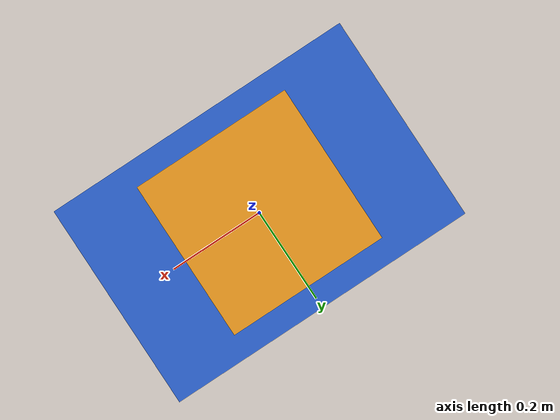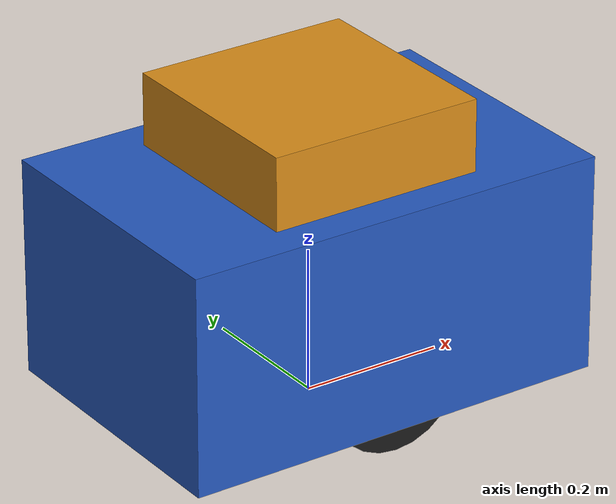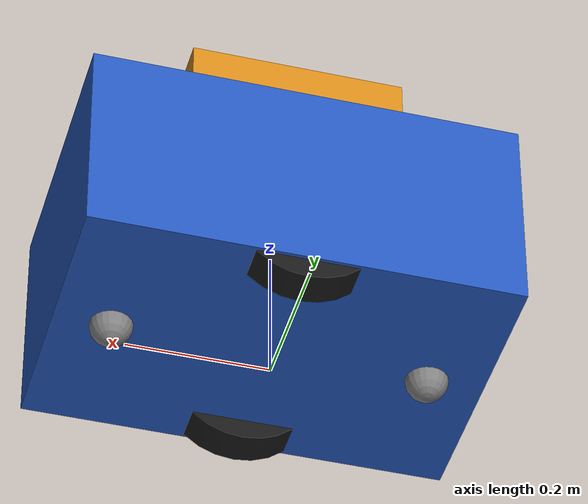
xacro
<?xml version="1.0"?>
<robot name="amr_payload" xmlns:xacro="http://www.ros.org/wiki/xacro">

  <xacro:arg name="payload_kg" default="0.0"/>
  <xacro:arg name="drive_mode" default="V"/>
  <xacro:arg name="accel_limited" default="true"/>
  <xacro:arg name="wheel_torque_max" default="3.0"/>
  <xacro:arg name="gt_rate" default="100"/>

  <xacro:property name="payload_kg" value="$(arg payload_kg)"/>
  <xacro:property name="wheel_torque_max" value="$(arg wheel_torque_max)"/>
  <xacro:property name="gt_rate" value="$(arg gt_rate)"/>

  <xacro:property name="is_drive_v" value="${'$(arg drive_mode)' == 'V'}"/>
  <xacro:property name="is_drive_t" value="${'$(arg drive_mode)' == 'T'}"/>
  <xacro:property name="accel_limited" value="${'$(arg accel_limited)' == 'true'}"/>

  <!-- 같은 model/ 디렉토리의 상대 경로. ROS 패키지가 아니라 find-pkg-share를 안 쓴다 -->
  <xacro:include filename="properties.xacro"/>
  <xacro:include filename="base.xacro"/>
  <xacro:include filename="wheels.xacro"/>
  <xacro:include filename="gazebo.xacro"/>

</robot>

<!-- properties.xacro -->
<robot xmlns:xacro="http://www.ros.org/wiki/xacro">

  <!-- 몸체: 0.6 x 0.4 x 0.3 m, 25 kg (README "모터 사양 근거" 참고) -->
  <xacro:property name="base_length" value="0.6"/>
  <xacro:property name="base_width" value="0.4"/>
  <xacro:property name="base_height" value="0.3"/>
  <xacro:property name="base_mass" value="25.0"/>
  <xacro:property name="ground_clearance" value="0.03"/>

  <!-- 적재물 상자: 몸체 위 중앙. 크기는 고정, 질량만 payload_kg 인자로 바뀐다 -->
  <xacro:property name="payload_length" value="0.3"/>
  <xacro:property name="payload_width" value="0.3"/>
  <xacro:property name="payload_height" value="0.1"/>
  <!-- 0 kg 조건에서 질량 0인 링크는 관성 행렬이 특이해져 물리 엔진이 불안정해질 수
       있어, 실질적으로 0인 아주 작은 질량으로 바닥을 깐다(결과에 영향 없음) -->
  <xacro:property name="payload_mass_floor" value="0.0001"/>

  <!-- 구동 바퀴 -->
  <xacro:property name="wheel_radius" value="0.1"/>
  <xacro:property name="wheel_width" value="0.05"/>
  <xacro:property name="wheel_contact_width" value="0.01"/>
  <xacro:property name="wheel_separation" value="0.34"/>
  <xacro:property name="wheel_mass" value="1.5"/>

  <!-- 캐스터: 앞뒤 2개, 마찰 없는 구 -->
  <xacro:property name="caster_radius" value="0.03"/>
  <xacro:property name="caster_offset_x" value="0.22"/>
  <xacro:property name="caster_mass" value="0.3"/>

  <!-- base_footprint(지면) → base_link(몸체 중심) 높이 -->
  <xacro:property name="base_z" value="${ground_clearance + base_height / 2}"/>

  <!-- 관성 모멘트 매크로 (amr_description/urdf/properties.xacro와 동일한 식) -->
  <xacro:macro name="box_inertia" params="m x y z">
    <inertial>
      <mass value="${m}"/>
      <inertia ixx="${m * (y*y + z*z) / 12}" ixy="0" ixz="0"
               iyy="${m * (x*x + z*z) / 12}" iyz="0"
               izz="${m * (x*x + y*y) / 12}"/>
    </inertial>
  </xacro:macro>

  <xacro:macro name="cylinder_inertia" params="m r h">
    <inertial>
      <mass value="${m}"/>
      <inertia ixx="${m * (3*r*r + h*h) / 12}" ixy="0" ixz="0"
               iyy="${m * (3*r*r + h*h) / 12}" iyz="0"
               izz="${m * r * r / 2}"/>
    </inertial>
  </xacro:macro>

  <xacro:macro name="sphere_inertia" params="m r">
    <inertial>
      <mass value="${m}"/>
      <inertia ixx="${2 * m * r * r / 5}" ixy="0" ixz="0"
               iyy="${2 * m * r * r / 5}" iyz="0"
               izz="${2 * m * r * r / 5}"/>
    </inertial>
  </xacro:macro>

</robot>

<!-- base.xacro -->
<!-- base_footprint(지면) → base_link(몸체) → payload_link(적재물, 고정 조인트) -->
<robot xmlns:xacro="http://www.ros.org/wiki/xacro">

  <link name="base_footprint"/>

  <link name="base_link">
    <visual>
      <geometry>
        <box size="${base_length} ${base_width} ${base_height}"/>
      </geometry>
      <material name="body">
        <color rgba="0.15 0.35 0.75 1"/>
      </material>
    </visual>
    <collision>
      <geometry>
        <box size="${base_length} ${base_width} ${base_height}"/>
      </geometry>
    </collision>
    <xacro:box_inertia m="${base_mass}" x="${base_length}" y="${base_width}" z="${base_height}"/>
  </link>

  <joint name="base_joint" type="fixed">
    <parent link="base_footprint"/>
    <child link="base_link"/>
    <origin xyz="0 0 ${base_z}" rpy="0 0 0"/>
  </joint>

  <!-- 적재물: 몸체 위 중앙에 고정. 질량은 payload_kg 인자(robot.urdf.xacro)로 바뀐다 -->
  <link name="payload_link">
    <visual>
      <geometry>
        <box size="${payload_length} ${payload_width} ${payload_height}"/>
      </geometry>
      <material name="payload">
        <color rgba="0.85 0.55 0.1 1"/>
      </material>
    </visual>
    <collision>
      <geometry>
        <box size="${payload_length} ${payload_width} ${payload_height}"/>
      </geometry>
    </collision>
    <xacro:box_inertia
      m="${payload_kg if payload_kg > payload_mass_floor else payload_mass_floor}"
      x="${payload_length}" y="${payload_width}" z="${payload_height}"/>
  </link>

  <joint name="payload_joint" type="fixed">
    <parent link="base_link"/>
    <child link="payload_link"/>
    <origin xyz="0 0 ${base_height / 2 + payload_height / 2}" rpy="0 0 0"/>
  </joint>

</robot>

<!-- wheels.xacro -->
<!-- 차동 구동: 좌우 구동 바퀴 + 앞뒤 캐스터. amr_description/urdf/wheels.xacro와 같은 구조 -->
<robot xmlns:xacro="http://www.ros.org/wiki/xacro">

  <!-- side: left | right, reflect: 1 | -1 -->
  <xacro:macro name="drive_wheel" params="side reflect">
    <link name="${side}_wheel_link">
      <visual>
        <origin xyz="0 0 0" rpy="${pi/2} 0 0"/>
        <geometry>
          <cylinder radius="${wheel_radius}" length="${wheel_width}"/>
        </geometry>
        <material name="wheel">
          <color rgba="0.1 0.1 0.1 1"/>
        </material>
      </visual>
      <!-- 충돌은 얇은 원통을 바깥으로 반 폭 옮겨 둔다 (properties.xacro 설명, PR #36) -->
      <collision>
        <origin xyz="0 ${reflect * wheel_contact_width / 2} 0" rpy="${pi/2} 0 0"/>
        <geometry>
          <cylinder radius="${wheel_radius}" length="${wheel_contact_width}"/>
        </geometry>
      </collision>
      <inertial>
        <origin xyz="0 0 0" rpy="${pi/2} 0 0"/>
        <mass value="${wheel_mass}"/>
        <inertia ixx="${wheel_mass * (3*wheel_radius*wheel_radius + wheel_width*wheel_width) / 12}" ixy="0" ixz="0"
                 iyy="${wheel_mass * (3*wheel_radius*wheel_radius + wheel_width*wheel_width) / 12}" iyz="0"
                 izz="${wheel_mass * wheel_radius * wheel_radius / 2}"/>
      </inertial>
    </link>

    <joint name="${side}_wheel_joint" type="continuous">
      <parent link="base_link"/>
      <child link="${side}_wheel_link"/>
      <origin xyz="0 ${reflect * wheel_separation / 2} ${wheel_radius - base_z}" rpy="0 0 0"/>
      <axis xyz="0 1 0"/>
      <!-- effort 한계 = 바퀴 토크 한계. V 모드(DiffDrive)는 속도 소스라 이 한계를
           엄격히 지키지 않을 수 있다 - README "결론" 참고 -->
      <limit effort="${wheel_torque_max}" velocity="100"/>
    </joint>

    <gazebo reference="${side}_wheel_link">
      <mu1>1.0</mu1>
      <mu2>1.0</mu2>
    </gazebo>
  </xacro:macro>

  <!-- name: front | rear, reflect: 1 | -1 -->
  <xacro:macro name="caster" params="name reflect">
    <link name="${name}_caster_link">
      <visual>
        <geometry>
          <sphere radius="${caster_radius}"/>
        </geometry>
        <material name="caster">
          <color rgba="0.5 0.5 0.5 1"/>
        </material>
      </visual>
      <collision>
        <geometry>
          <sphere radius="${caster_radius}"/>
        </geometry>
      </collision>
      <xacro:sphere_inertia m="${caster_mass}" r="${caster_radius}"/>
    </link>

    <joint name="${name}_caster_joint" type="fixed">
      <parent link="base_link"/>
      <child link="${name}_caster_link"/>
      <origin xyz="${reflect * caster_offset_x} 0 ${caster_radius - base_z}" rpy="0 0 0"/>
    </joint>

    <!-- 고정 구로 캐스터를 근사하므로 마찰을 없앤다 -->
    <gazebo reference="${name}_caster_link">
      <mu1>0.0</mu1>
      <mu2>0.0</mu2>
    </gazebo>
  </xacro:macro>

  <xacro:drive_wheel side="left" reflect="1"/>
  <xacro:drive_wheel side="right" reflect="-1"/>
  <xacro:caster name="front" reflect="1"/>
  <xacro:caster name="rear" reflect="-1"/>

</robot>
